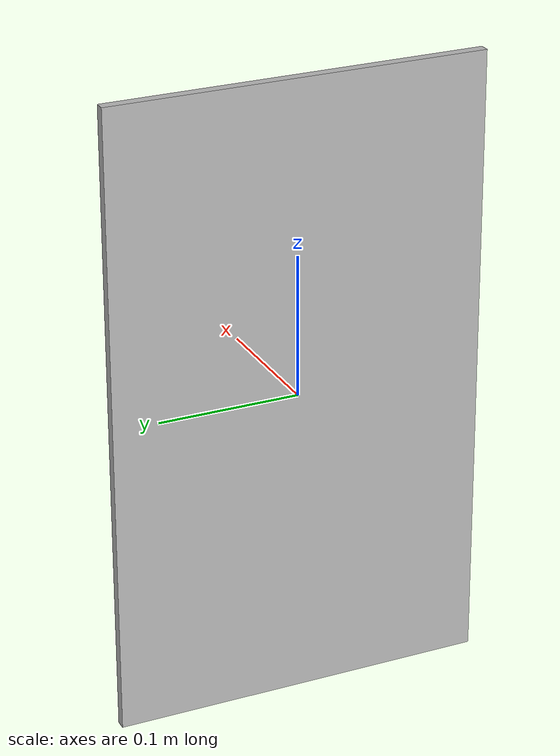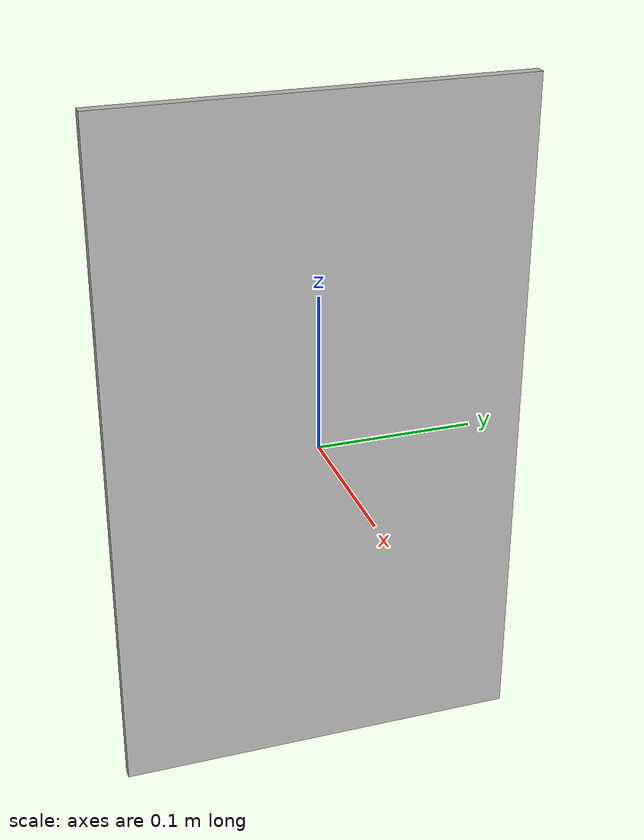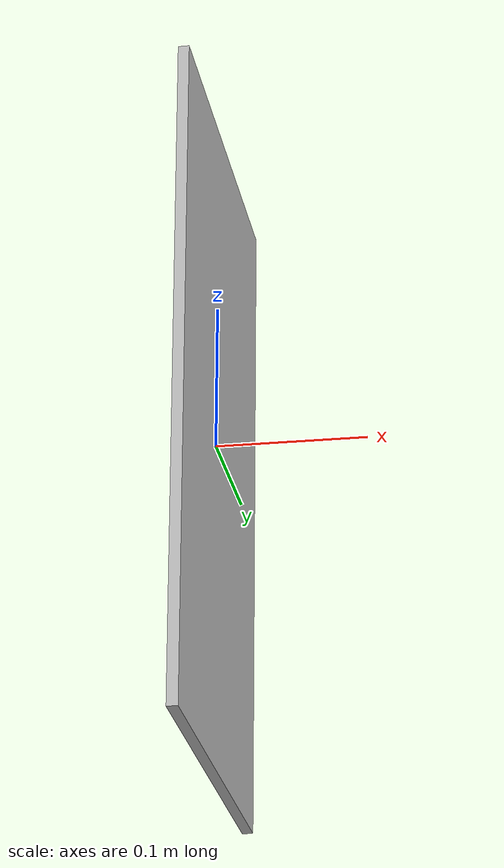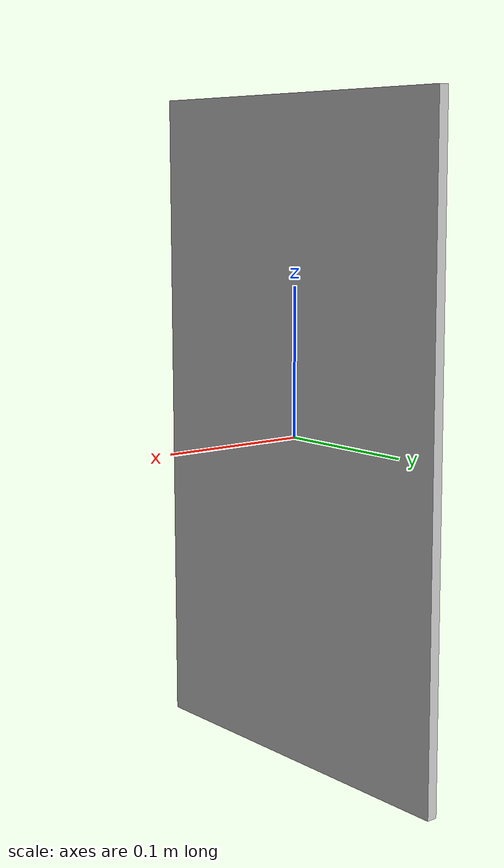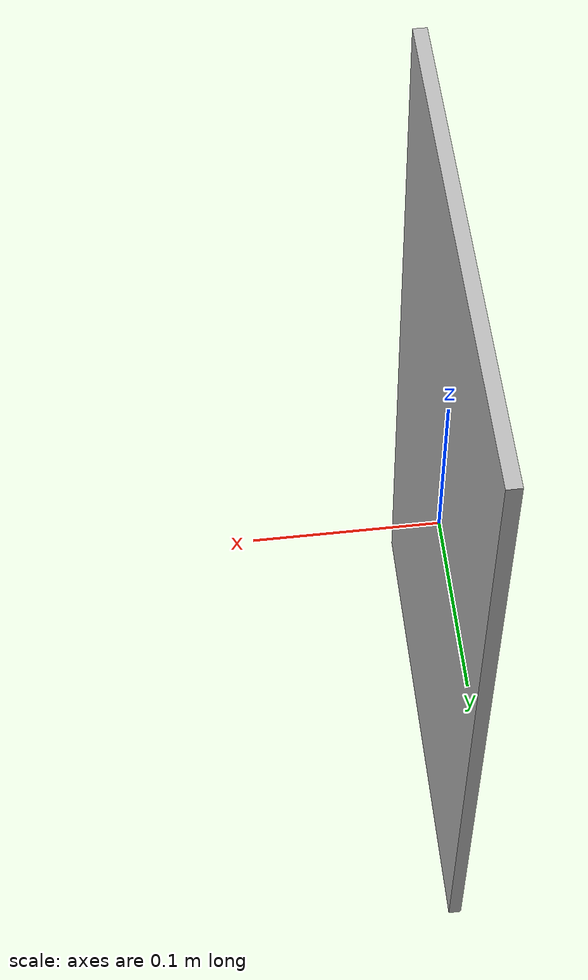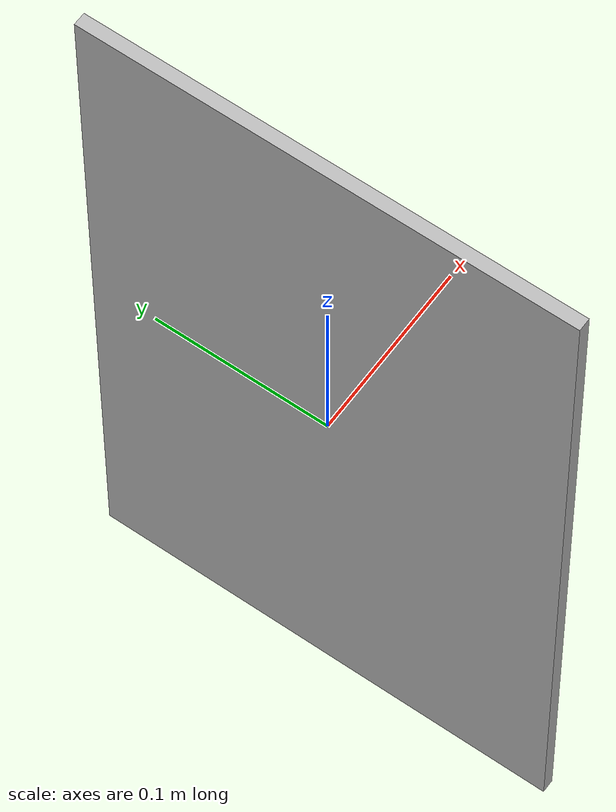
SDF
<?xml version="1.0" ?>
<sdf version="1.5">
  <model name="Dog">
    <static>true</static>
    <link name="link">
      <pose>0 0 0 0 0 0</pose>
      <collision name="collision">
        <geometry>
          <box>
            <size>.0072 0.2677 .4462</size>
          </box>
        </geometry>
      </collision>
      <visual name="visual">
        <cast_shadows>false</cast_shadows>
        <geometry>
          <box>
            <size>.0072 0.2677 .4462</size>
          </box>
        </geometry>
        <material>
          <script>
            <uri>model://Dog/materials/scripts</uri>
            <uri>model://Dog/materials/textures</uri>
            <name>vrc/Dog</name>
          </script>
        </material>
      </visual>
    </link>
  </model>
</sdf>
